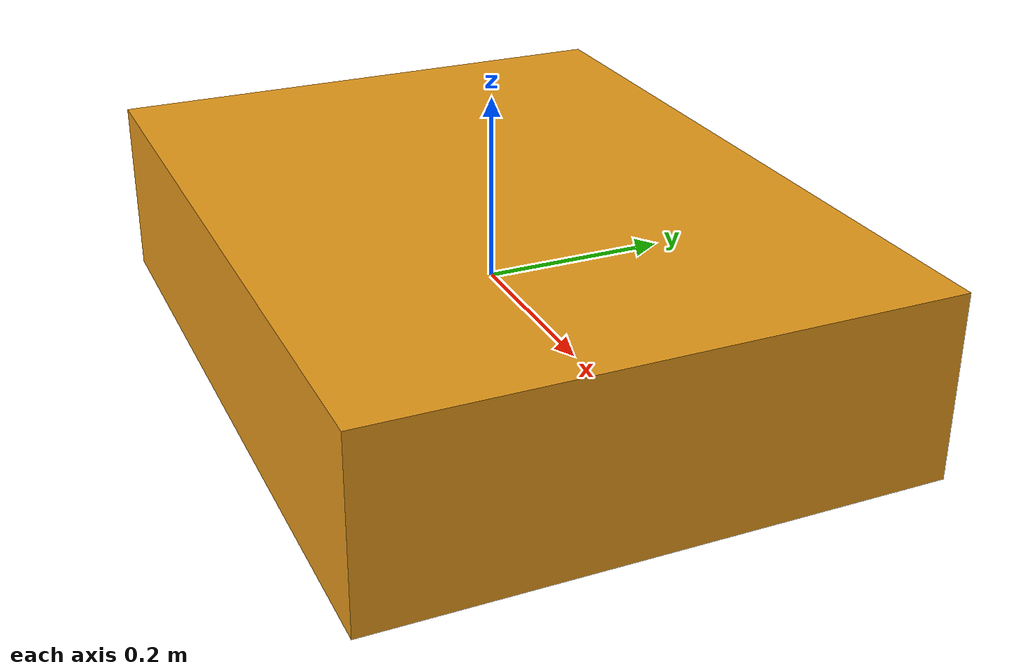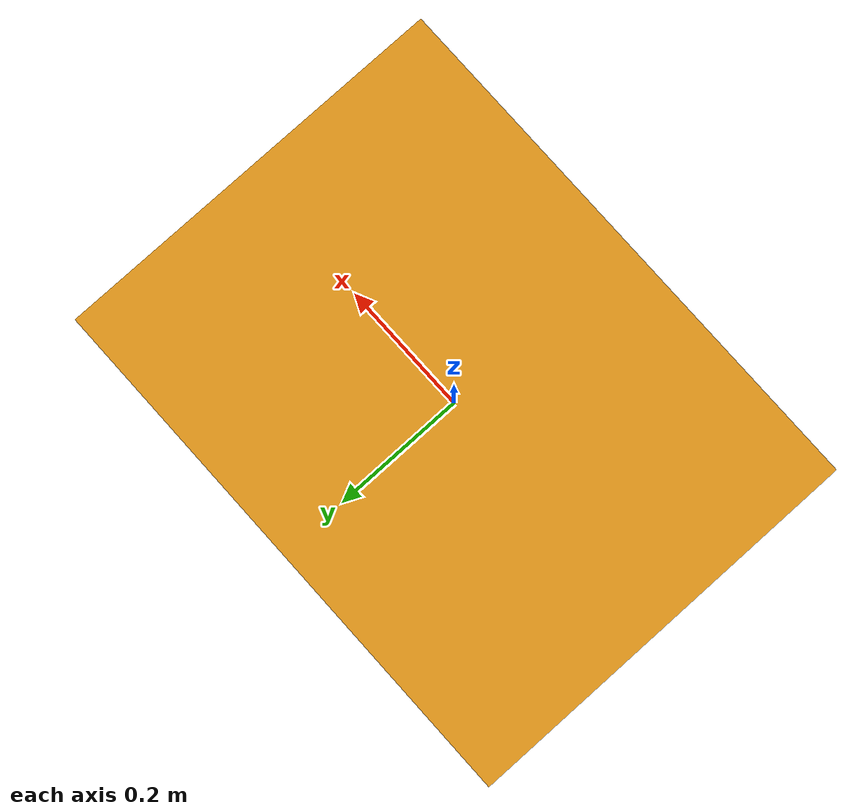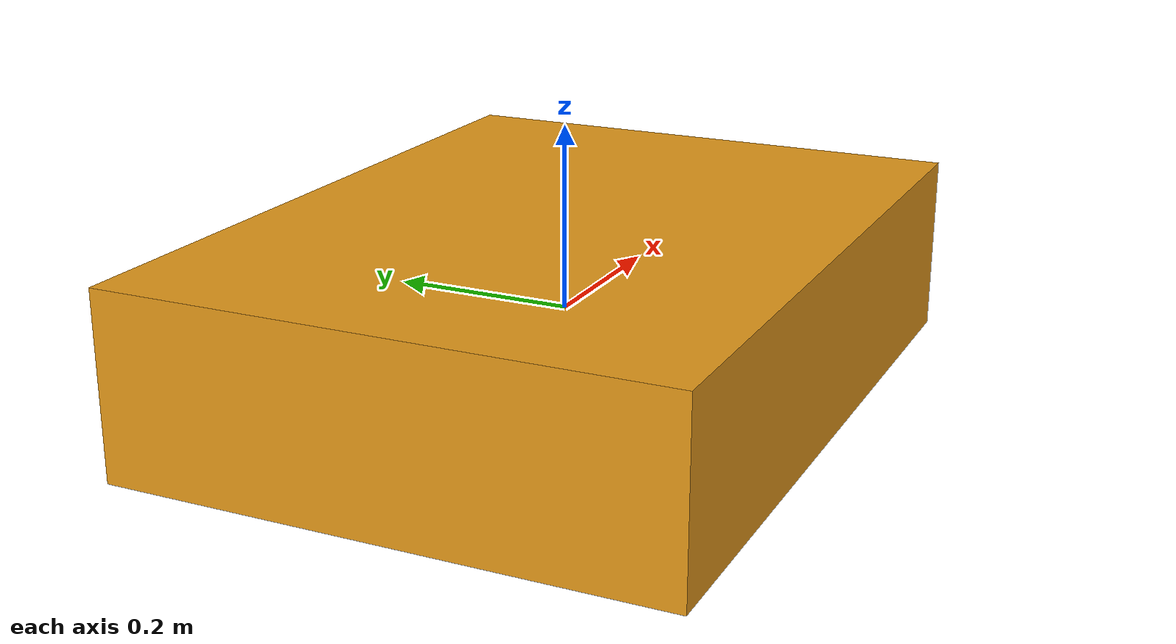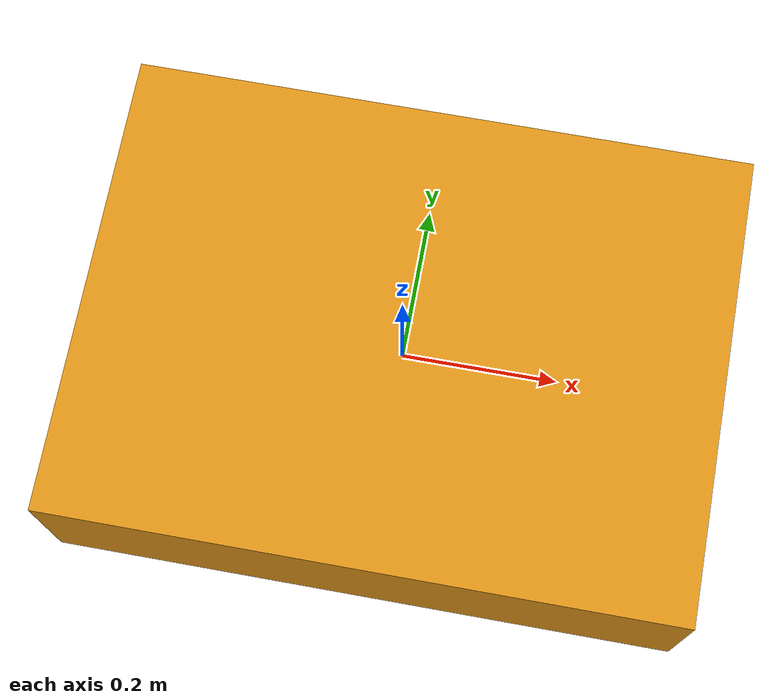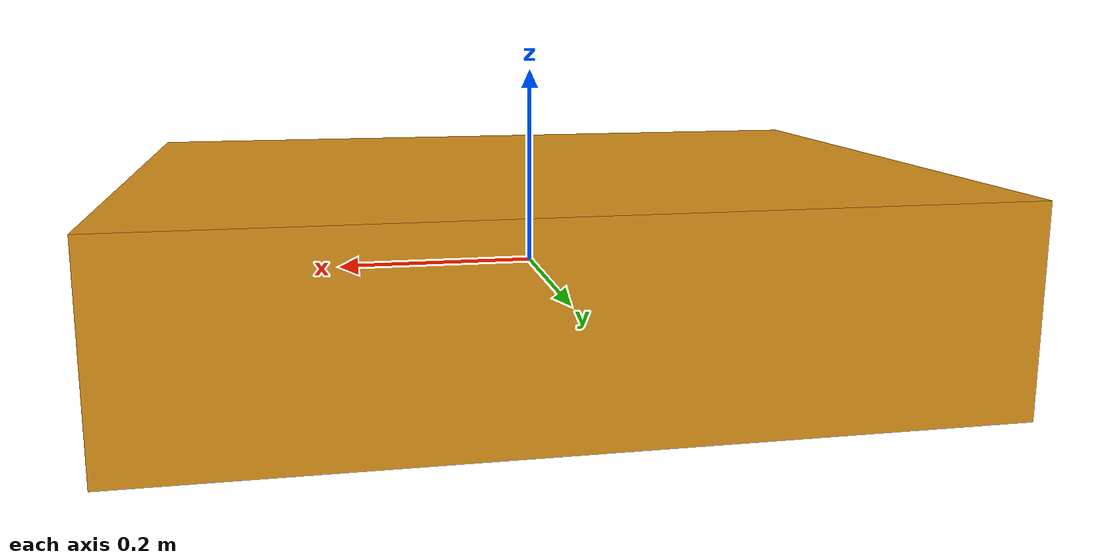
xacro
<?xml version="1.0"?>
<robot name="xacro_mixed_args" xmlns:xacro="http://www.ros.org/wiki/xacro">

  <!-- Has default → importer uses it automatically. -->
  <xacro:arg name="prefix"    default=""/>
  <xacro:arg name="use_arm"   default="false"/>

  <!-- No default → importer passes robot_id:="" (empty string fallback). -->
  <xacro:arg name="robot_id"  default=""/>

  <xacro:property name="prefix_p"   value="$(arg prefix)"/>
  <xacro:property name="robot_id_p" value="$(arg robot_id)"/>
  <xacro:property name="use_arm_p"  value="$(arg use_arm)"/>

  <link name="${prefix_p}base_link">
    <visual>
      <geometry>
        <box size="0.8 0.6 0.2"/>
      </geometry>
      <material name="chassis">
        <color rgba="0.9 0.6 0.1 1.0"/>
      </material>
    </visual>
    <collision>
      <geometry>
        <box size="0.8 0.6 0.2"/>
      </geometry>
    </collision>
    <inertial>
      <mass value="20.0"/>
      <inertia ixx="0.4" ixy="0.0" ixz="0.0"
               iyy="0.6" iyz="0.0" izz="0.8"/>
    </inertial>
  </link>

  <xacro:if value="${use_arm_p == 'true'}">
    <link name="${prefix_p}arm_base">
      <visual>
        <origin xyz="0 0 0.15"/>
        <geometry>
          <box size="0.1 0.1 0.3"/>
        </geometry>
        <material name="arm_mat">
          <color rgba="0.3 0.3 0.8 1.0"/>
        </material>
      </visual>
      <collision>
        <origin xyz="0 0 0.15"/>
        <geometry>
          <box size="0.1 0.1 0.3"/>
        </geometry>
      </collision>
      <inertial>
        <mass value="2.0"/>
        <inertia ixx="0.02" ixy="0.0" ixz="0.0"
                 iyy="0.02" iyz="0.0" izz="0.002"/>
      </inertial>
    </link>
    <joint name="${prefix_p}arm_joint" type="fixed">
      <parent link="${prefix_p}base_link"/>
      <child link="${prefix_p}arm_base"/>
      <origin xyz="0.3 0 0.1"/>
    </joint>
  </xacro:if>

</robot>
